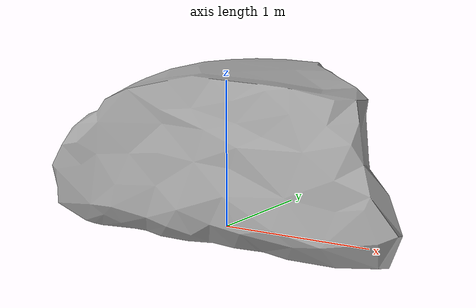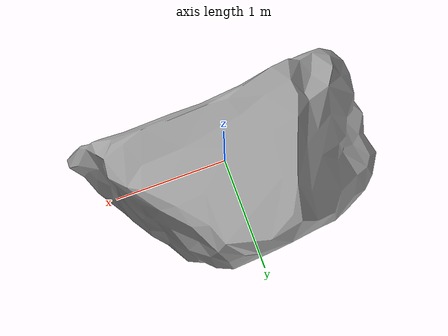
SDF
<?xml version="1.0"?>
<sdf version="1.7">
  <model name="rock2">
    <static>true</static>
    <link name="main_link">
      <collision name="plane_collision">
        <geometry>
          <mesh>
            <uri>model://rock2/meshes/rock2.dae</uri>
          </mesh>
        </geometry>
      </collision>
      <visual name="plane_visual">
        <geometry>
          <mesh>
            <uri>model://rock2/meshes/rock2.dae</uri>
          </mesh>
        </geometry>
        <material>
          <script>
            <uri>model://rock2/materials/scripts</uri>
            <uri>model://rock2/materials/textures</uri>
            <name>Rock2/Material</name>
          </script>
        </material>
      </visual>
    </link>
  </model>
</sdf>
